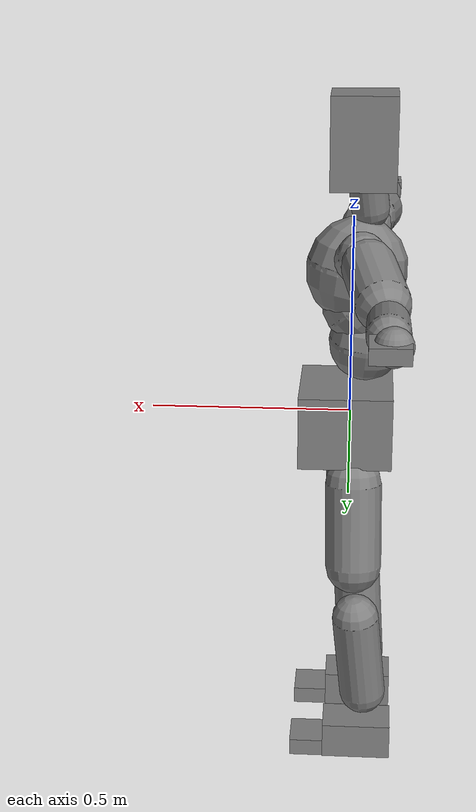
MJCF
<mujoco model="smpl">
  <compiler angle="radian" />
  <default>
    <motor ctrlrange="-1 1" ctrllimited="true" />
    <geom condim="1" friction="1.0 0.05 0.05" solimp=".9 .99 .003" solref=".015 1" />
    <joint limited="true" solimplimit="0 .99 .01" />
    <site size=".04" group="3" />
    <default class="force-torque">
      <site type="box" size=".01 .01 .02" rgba="1 0 0 1" />
    </default>
    <default class="touch">
      <site type="capsule" rgba="0 0 1 .3" />
    </default>
  </default>
  <worldbody>
    <body name="Pelvis" pos="0 0 0">
      <freejoint name="Pelvis" />
      <body name="L_Hip" pos="-0.0068 0.0695 -0.0914">
        <joint name="L_Hip_x" type="hinge" pos="0 0 0" axis="1 0 0" actuatorfrcrange="-300 300" stiffness="500" damping="50" armature="0.02" range="-0.5236 1.5708" />
        <joint name="L_Hip_y" type="hinge" pos="0 0 0" axis="0 1 0" actuatorfrcrange="-300 300" stiffness="500" damping="50" armature="0.02" range="-2.4435 1.0472" />
        <joint name="L_Hip_z" type="hinge" pos="0 0 0" axis="0 0 1" actuatorfrcrange="-300 300" stiffness="500" damping="50" armature="0.02" range="-0.6109 1.0472" />
        <body name="L_Knee" pos="-0.0045 0.0343 -0.3752">
          <joint name="L_Knee_x" type="hinge" pos="0 0 0" axis="1 0 0" actuatorfrcrange="-200 200" stiffness="500" damping="50" armature="0.02" range="-0.5236 0.5236" />
          <joint name="L_Knee_y" type="hinge" pos="0 0 0" axis="0 1 0" actuatorfrcrange="-200 200" stiffness="500" damping="50" armature="0.02" range="0 2.7925" />
          <joint name="L_Knee_z" type="hinge" pos="0 0 0" axis="0 0 1" actuatorfrcrange="-200 200" stiffness="500" damping="50" armature="0.02" range="-0.5236 0.5236" />
          <body name="L_Ankle" pos="-0.0437 -0.0136 -0.398">
            <joint name="L_Ankle_x" type="hinge" pos="0 0 0" axis="1 0 0" actuatorfrcrange="-100 100" stiffness="400" damping="40" armature="0.02" range="-0.5236 0.5236" />
            <joint name="L_Ankle_y" type="hinge" pos="0 0 0" axis="0 1 0" actuatorfrcrange="-100 100" stiffness="400" damping="40" armature="0.02" range="-0.9599 0.9599" />
            <joint name="L_Ankle_z" type="hinge" pos="0 0 0" axis="0 0 1" actuatorfrcrange="-100 100" stiffness="400" damping="40" armature="0.02" range="-0.6981 0.6981" />
            <body name="L_Toe" pos="0.1193 0.0124 -0.0258">
              <joint name="L_Toe_x" type="hinge" pos="0 0 0" axis="1 0 0" actuatorfrcrange="-75 75" stiffness="200" damping="20" armature="0.02" range="-0.5236 0.5236" />
              <joint name="L_Toe_y" type="hinge" pos="0 0 0" axis="0 1 0" actuatorfrcrange="-75 75" stiffness="200" damping="20" armature="0.02" range="-1.0472 1.0472" />
              <joint name="L_Toe_z" type="hinge" pos="0 0 0" axis="0 0 1" actuatorfrcrange="-75 75" stiffness="200" damping="20" armature="0.02" range="-0.5236 0.5236" />
              <geom type="box" pos="0.023038 0.028710 -0.002319" quat="0.999986 0.002316 0.002404 -0.004045" size="0.0512 0.0511 0.0222" density="348.643194" />
            </body>
            <geom type="box" pos="0.019061 0.041993 -0.002924" quat="0.999986 0.002316 0.002404 -0.004045" size="0.0882 0.0538 0.0467" density="406.139068" />
          </body>
          <geom type="capsule" contype="1" conaffinity="1" fromto="-0.015548 0.021243 -0.059293 -0.038822 -0.007378 -0.295920" size="0.0603" density="997.146534" />
        </body>
        <geom type="capsule" contype="1" conaffinity="1" fromto="-0.006680 0.019453 -0.070117 -0.010837 0.053776 -0.284242" size="0.0711" density="1090.054895" />
      </body>
      <body name="R_Hip" pos="-0.0043 -0.0677 -0.0905">
        <joint name="R_Hip_x" type="hinge" pos="0 0 0" axis="1 0 0" actuatorfrcrange="-300 300" stiffness="500" damping="50" armature="0.02" range="-1.5708 0.5236" />
        <joint name="R_Hip_y" type="hinge" pos="0 0 0" axis="0 1 0" actuatorfrcrange="-300 300" stiffness="500" damping="50" armature="0.02" range="-2.4435 1.0472" />
        <joint name="R_Hip_z" type="hinge" pos="0 0 0" axis="0 0 1" actuatorfrcrange="-300 300" stiffness="500" damping="50" armature="0.02" range="-1.0472 0.6109" />
        <body name="R_Knee" pos="-0.0089 -0.0383 -0.3826">
          <joint name="R_Knee_x" type="hinge" pos="0 0 0" axis="1 0 0" actuatorfrcrange="-200 200" stiffness="500" damping="50" armature="0.02" range="-0.5236 0.5236" />
          <joint name="R_Knee_y" type="hinge" pos="0 0 0" axis="0 1 0" actuatorfrcrange="-200 200" stiffness="500" damping="50" armature="0.02" range="0 2.7925" />
          <joint name="R_Knee_z" type="hinge" pos="0 0 0" axis="0 0 1" actuatorfrcrange="-200 200" stiffness="500" damping="50" armature="0.02" range="-0.5236 0.5236" />
          <body name="R_Ankle" pos="-0.0423 0.0158 -0.3984">
            <joint name="R_Ankle_x" type="hinge" pos="0 0 0" axis="1 0 0" actuatorfrcrange="-100 100" stiffness="400" damping="40" armature="0.02" range="-0.5236 0.5236" />
            <joint name="R_Ankle_y" type="hinge" pos="0 0 0" axis="0 1 0" actuatorfrcrange="-100 100" stiffness="400" damping="40" armature="0.02" range="-0.9599 0.9599" />
            <joint name="R_Ankle_z" type="hinge" pos="0 0 0" axis="0 0 1" actuatorfrcrange="-100 100" stiffness="400" damping="40" armature="0.02" range="-0.6981 0.6981" />
            <body name="R_Toe" pos="0.1193 -0.0124 -0.0258">
              <joint name="R_Toe_x" type="hinge" pos="0 0 0" axis="1 0 0" actuatorfrcrange="-75 75" stiffness="200" damping="20" armature="0.02" range="-0.5236 0.5236" />
              <joint name="R_Toe_y" type="hinge" pos="0 0 0" axis="0 1 0" actuatorfrcrange="-75 75" stiffness="200" damping="20" armature="0.02" range="-1.0472 1.0472" />
              <joint name="R_Toe_z" type="hinge" pos="0 0 0" axis="0 0 1" actuatorfrcrange="-75 75" stiffness="200" damping="20" armature="0.02" range="-0.5236 0.5236" />
              <geom type="box" pos="0.021475 -0.020679 0.003507" quat="0.999986 0.002316 0.002404 -0.004045" size="0.0512 0.051 0.0222" density="349.326808" />
            </body>
            <geom type="box" pos="0.017499 -0.032096 0.002803" quat="0.999986 0.002316 0.002404 -0.004045" size="0.0882 0.0538 0.0467" density="406.139068" />
          </body>
          <geom type="capsule" contype="1" conaffinity="1" fromto="-0.016247 -0.005155 -0.050779 -0.031314 0.006175 -0.290859" size="0.0624" density="919.897980" />
        </body>
        <geom type="capsule" contype="1" conaffinity="1" fromto="-0.005691 -0.012642 -0.079921 -0.016491 -0.038609 -0.284994" size="0.0706" density="1163.523790" />
      </body>
      <body name="Torso" pos="-0.0267 -0.0025 0.109">
        <joint name="Torso_x" type="hinge" pos="0 0 0" axis="1 0 0" actuatorfrcrange="-300 300" stiffness="1000" damping="100" armature="0.02" range="-1.0472 1.0472" />
        <joint name="Torso_y" type="hinge" pos="0 0 0" axis="0 1 0" actuatorfrcrange="-300 300" stiffness="1000" damping="100" armature="0.02" range="-1.0472 1.5708" />
        <joint name="Torso_z" type="hinge" pos="0 0 0" axis="0 0 1" actuatorfrcrange="-300 300" stiffness="1000" damping="100" armature="0.02" range="-0.8727 0.8727" />
        <body name="Spine" pos="0.0011 0.0055 0.1352">
          <joint name="Spine_x" type="hinge" pos="0 0 0" axis="1 0 0" actuatorfrcrange="-200 200" stiffness="1000" damping="100" armature="0.02" range="-1.0472 1.0472" />
          <joint name="Spine_y" type="hinge" pos="0 0 0" axis="0 1 0" actuatorfrcrange="-200 200" stiffness="1000" damping="100" armature="0.02" range="-1.0472 1.5708" />
          <joint name="Spine_z" type="hinge" pos="0 0 0" axis="0 0 1" actuatorfrcrange="-200 200" stiffness="1000" damping="100" armature="0.02" range="-0.8727 0.8727" />
          <body name="Chest" pos="0.0254 0.0015 0.0529">
            <joint name="Chest_x" type="hinge" pos="0 0 0" axis="1 0 0" actuatorfrcrange="-150 150" stiffness="1000" damping="100" armature="0.02" range="-1.0472 1.0472" />
            <joint name="Chest_y" type="hinge" pos="0 0 0" axis="0 1 0" actuatorfrcrange="-150 150" stiffness="1000" damping="100" armature="0.02" range="-1.0472 1.5708" />
            <joint name="Chest_z" type="hinge" pos="0 0 0" axis="0 0 1" actuatorfrcrange="-150 150" stiffness="1000" damping="100" armature="0.02" range="-0.8727 0.8727" />
            <body name="Neck" pos="-0.0429 -0.0028 0.2139">
              <joint name="Neck_x" type="hinge" pos="0 0 0" axis="1 0 0" actuatorfrcrange="-75 75" stiffness="500" damping="50" armature="0.02" range="-0.8727 0.8727" />
              <joint name="Neck_y" type="hinge" pos="0 0 0" axis="0 1 0" actuatorfrcrange="-75 75" stiffness="500" damping="50" armature="0.02" range="-0.6981 1.0472" />
              <joint name="Neck_z" type="hinge" pos="0 0 0" axis="0 0 1" actuatorfrcrange="-75 75" stiffness="500" damping="50" armature="0.02" range="-0.7854 0.7854" />
              <body name="Head" pos="0.0513 0.0052 0.065">
                <joint name="Head_x" type="hinge" pos="0 0 0" axis="1 0 0" actuatorfrcrange="-25 25" stiffness="200" damping="20" armature="0.02" range="-0.8727 0.8727" />
                <joint name="Head_y" type="hinge" pos="0 0 0" axis="0 1 0" actuatorfrcrange="-25 25" stiffness="200" damping="20" armature="0.02" range="-0.6981 1.0472" />
                <joint name="Head_z" type="hinge" pos="0 0 0" axis="0 0 1" actuatorfrcrange="-25 25" stiffness="200" damping="20" armature="0.02" range="-0.7854 0.7854" />
                <geom type="box" pos="-0.027757 -0.009184 0.104107" quat="0.999986 0.002316 0.002404 -0.004045" size="0.0791 0.0629 0.1116" density="808.496445" />
              </body>
              <geom type="capsule" contype="1" conaffinity="1" fromto="0.004469 -0.013165 0.003452 0.016247 0.003517 0.095175" size="0.0462" density="365.906451" />
            </body>
            <body name="L_Thorax" pos="-0.0341 0.0788 0.1217">
              <joint name="L_Thorax_x" type="hinge" pos="0 0 0" axis="1 0 0" actuatorfrcrange="-200 200" stiffness="500" damping="50" armature="0.02" range="-0.6981 0.5236" />
              <joint name="L_Thorax_y" type="hinge" pos="0 0 0" axis="0 1 0" actuatorfrcrange="-200 200" stiffness="500" damping="50" armature="0.02" range="-0.5236 0.5236" />
              <joint name="L_Thorax_z" type="hinge" pos="0 0 0" axis="0 0 1" actuatorfrcrange="-200 200" stiffness="500" damping="50" armature="0.02" range="-0.5236 0.5236" />
              <body name="L_Shoulder" pos="-0.0089 0.091 0.0305">
                <joint name="L_Shoulder_x" type="hinge" pos="0 0 0" axis="1 0 0" actuatorfrcrange="-150 150" stiffness="400" damping="40" armature="0.02" range="-2.3562 1.5708" />
                <joint name="L_Shoulder_y" type="hinge" pos="0 0 0" axis="0 1 0" actuatorfrcrange="-150 150" stiffness="400" damping="40" armature="0.02" range="-1.5708 1.5708" />
                <joint name="L_Shoulder_z" type="hinge" pos="0 0 0" axis="0 0 1" actuatorfrcrange="-150 150" stiffness="400" damping="40" armature="0.02" range="-2.7925 1.0472" />
                <body name="L_Elbow" pos="-0.0275 0.2596 -0.0128">
                  <joint name="L_Elbow_x" type="hinge" pos="0 0 0" axis="1 0 0" actuatorfrcrange="-100 100" stiffness="300" damping="30" armature="0.02" range="-0.5236 0.5236" />
                  <joint name="L_Elbow_y" type="hinge" pos="0 0 0" axis="0 1 0" actuatorfrcrange="-100 100" stiffness="300" damping="30" armature="0.02" range="-0.5236 0.5236" />
                  <joint name="L_Elbow_z" type="hinge" pos="0 0 0" axis="0 0 1" actuatorfrcrange="-100 100" stiffness="300" damping="30" armature="0.02" range="-2.7925 0" />
                  <body name="L_Wrist" pos="-0.0012 0.2492 0.009">
                    <joint name="L_Wrist_x" type="hinge" pos="0 0 0" axis="1 0 0" actuatorfrcrange="-75 75" stiffness="200" damping="20" armature="0.02" range="-1.5708 1.5708" />
                    <joint name="L_Wrist_y" type="hinge" pos="0 0 0" axis="0 1 0" actuatorfrcrange="-75 75" stiffness="200" damping="20" armature="0.02" range="-1.5708 1.5708" />
                    <joint name="L_Wrist_z" type="hinge" pos="0 0 0" axis="0 0 1" actuatorfrcrange="-75 75" stiffness="200" damping="20" armature="0.02" range="-1.0472 1.0472" />
                    <body name="L_Hand" pos="-0.0149 0.084 -0.0082">
                      <joint name="L_Hand_x" type="hinge" pos="0 0 0" axis="1 0 0" actuatorfrcrange="-50 50" stiffness="100" damping="10" armature="0.02" range="-1.5708 1.5708" />
                      <joint name="L_Hand_y" type="hinge" pos="0 0 0" axis="0 1 0" actuatorfrcrange="-50 50" stiffness="100" damping="10" armature="0.02" range="-1.5708 1.5708" />
                      <joint name="L_Hand_z" type="hinge" pos="0 0 0" axis="0 0 1" actuatorfrcrange="-50 50" stiffness="100" damping="10" armature="0.02" range="-1.5708 1.5708" />
                      <geom type="sphere" contype="1" conaffinity="1" pos="0.002823 -0.038296 -0.018826" size="0.041620" density="530.864244" />
                    </body>
                    <geom type="box" pos="-0.005156 0.054835 -0.030081" quat="0.999986 0.002316 0.002404 -0.004045" size="0.0428 0.0436 0.0177" density="1128.126878" />
                  </body>
                  <geom type="capsule" contype="1" conaffinity="1" fromto="-0.007192 0.054244 -0.045639 -0.005111 0.201748 -0.027063" size="0.0471" density="734.799835" />
                </body>
                <geom type="capsule" contype="1" conaffinity="1" fromto="0.007933 0.063452 -0.007307 -0.024557 0.214321 -0.050350" size="0.0631" density="478.484804" />
              </body>
              <geom type="capsule" contype="1" conaffinity="1" fromto="0.023793 -0.004707 -0.008966 0.013320 0.076921 0.025864" size="0.0572" density="409.348993" />
            </body>
            <body name="R_Thorax" pos="-0.0386 -0.0818 0.1188">
              <joint name="R_Thorax_x" type="hinge" pos="0 0 0" axis="1 0 0" actuatorfrcrange="-200 200" stiffness="500" damping="50" armature="0.02" range="-0.5236 0.6981" />
              <joint name="R_Thorax_y" type="hinge" pos="0 0 0" axis="0 1 0" actuatorfrcrange="-200 200" stiffness="500" damping="50" armature="0.02" range="-0.5236 0.5236" />
              <joint name="R_Thorax_z" type="hinge" pos="0 0 0" axis="0 0 1" actuatorfrcrange="-200 200" stiffness="500" damping="50" armature="0.02" range="-0.5236 0.5236" />
              <body name="R_Shoulder" pos="-0.0091 -0.096 0.0326">
                <joint name="R_Shoulder_x" type="hinge" pos="0 0 0" axis="1 0 0" actuatorfrcrange="-150 150" stiffness="400" damping="40" armature="0.02" range="-1.5708 2.3562" />
                <joint name="R_Shoulder_y" type="hinge" pos="0 0 0" axis="0 1 0" actuatorfrcrange="-150 150" stiffness="400" damping="40" armature="0.02" range="-1.5708 1.5708" />
                <joint name="R_Shoulder_z" type="hinge" pos="0 0 0" axis="0 0 1" actuatorfrcrange="-150 150" stiffness="400" damping="40" armature="0.02" range="-1.0472 2.7925" />
                <body name="R_Elbow" pos="-0.0214 -0.2537 -0.0133">
                  <joint name="R_Elbow_x" type="hinge" pos="0 0 0" axis="1 0 0" actuatorfrcrange="-100 100" stiffness="300" damping="30" armature="0.02" range="-0.5236 0.5236" />
                  <joint name="R_Elbow_y" type="hinge" pos="0 0 0" axis="0 1 0" actuatorfrcrange="-100 100" stiffness="300" damping="30" armature="0.02" range="-0.5236 0.5236" />
                  <joint name="R_Elbow_z" type="hinge" pos="0 0 0" axis="0 0 1" actuatorfrcrange="-100 100" stiffness="300" damping="30" armature="0.02" range="0 2.7925" />
                  <body name="R_Wrist" pos="-0.0056 -0.2553 0.0078">
                    <joint name="R_Wrist_x" type="hinge" pos="0 0 0" axis="1 0 0" actuatorfrcrange="-75 75" stiffness="200" damping="20" armature="0.02" range="-1.5708 1.5708" />
                    <joint name="R_Wrist_y" type="hinge" pos="0 0 0" axis="0 1 0" actuatorfrcrange="-75 75" stiffness="200" damping="20" armature="0.02" range="-1.5708 1.5708" />
                    <joint name="R_Wrist_z" type="hinge" pos="0 0 0" axis="0 0 1" actuatorfrcrange="-75 75" stiffness="200" damping="20" armature="0.02" range="-1.0472 1.0472" />
                    <body name="R_Hand" pos="-0.0103 -0.0846 -0.0061">
                      <joint name="R_Hand_x" type="hinge" pos="0 0 0" axis="1 0 0" actuatorfrcrange="-50 50" stiffness="100" damping="10" armature="0.02" range="-1.5708 1.5708" />
                      <joint name="R_Hand_y" type="hinge" pos="0 0 0" axis="0 1 0" actuatorfrcrange="-50 50" stiffness="100" damping="10" armature="0.02" range="-1.5708 1.5708" />
                      <joint name="R_Hand_z" type="hinge" pos="0 0 0" axis="0 0 1" actuatorfrcrange="-50 50" stiffness="100" damping="10" armature="0.02" range="-1.5708 1.5708" />
                      <geom type="sphere" contype="1" conaffinity="1" pos="0.002743 0.038404 -0.018806" size="0.041990" density="530.883377" />
                    </body>
                    <geom type="box" pos="-0.014149 -0.060000 -0.034408" quat="0.999986 0.002316 0.002404 -0.004045" size="0.0428 0.041 0.0177" density="1273.497307" />
                  </body>
                  <geom type="capsule" contype="1" conaffinity="1" fromto="-0.004190 -0.065554 -0.018221 -0.012890 -0.211974 -0.021660" size="0.0474" density="744.287147" />
                </body>
                <geom type="capsule" contype="1" conaffinity="1" fromto="0.005373 -0.055115 -0.005140 -0.015625 -0.216665 -0.024091" size="0.0629" density="466.074504" />
              </body>
              <geom type="capsule" contype="1" conaffinity="1" fromto="0.019987 -0.004336 -0.008272 0.007476 -0.074083 0.023264" size="0.0627" density="350.132256" />
            </body>
            <geom type="capsule" contype="1" conaffinity="1" fromto="-0.007808 -0.008104 0.063538 -0.010257 -0.008939 0.075547" size="0.1233" density="1321.362526" />
          </body>
          <geom type="capsule" contype="1" conaffinity="1" fromto="0.003782 0.005196 0.032558 0.008296 0.003734 0.038029" size="0.0929" density="994.237046" />
        </body>
        <geom type="capsule" contype="1" conaffinity="1" fromto="-0.009983 0.009349 0.073920 -0.011010 0.010799 0.086532" size="0.0925" density="785.628746" />
      </body>
      <geom type="box" pos="0.009297 0.000705 -0.018533" quat="0.999986 0.002316 0.002404 -0.004045" size="0.1161 0.1271 0.0926" density="558.685486" />
    </body>
  </worldbody>
  <actuator>
    <motor name="L_Hip_x" joint="L_Hip_x" gear="300" />
    <motor name="L_Hip_y" joint="L_Hip_y" gear="300" />
    <motor name="L_Hip_z" joint="L_Hip_z" gear="300" />
    <motor name="L_Knee_x" joint="L_Knee_x" gear="200" />
    <motor name="L_Knee_y" joint="L_Knee_y" gear="200" />
    <motor name="L_Knee_z" joint="L_Knee_z" gear="200" />
    <motor name="L_Ankle_x" joint="L_Ankle_x" gear="100" />
    <motor name="L_Ankle_y" joint="L_Ankle_y" gear="100" />
    <motor name="L_Ankle_z" joint="L_Ankle_z" gear="100" />
    <motor name="L_Toe_x" joint="L_Toe_x" gear="75" />
    <motor name="L_Toe_y" joint="L_Toe_y" gear="75" />
    <motor name="L_Toe_z" joint="L_Toe_z" gear="75" />
    <motor name="R_Hip_x" joint="R_Hip_x" gear="300" />
    <motor name="R_Hip_y" joint="R_Hip_y" gear="300" />
    <motor name="R_Hip_z" joint="R_Hip_z" gear="300" />
    <motor name="R_Knee_x" joint="R_Knee_x" gear="200" />
    <motor name="R_Knee_y" joint="R_Knee_y" gear="200" />
    <motor name="R_Knee_z" joint="R_Knee_z" gear="200" />
    <motor name="R_Ankle_x" joint="R_Ankle_x" gear="100" />
    <motor name="R_Ankle_y" joint="R_Ankle_y" gear="100" />
    <motor name="R_Ankle_z" joint="R_Ankle_z" gear="100" />
    <motor name="R_Toe_x" joint="R_Toe_x" gear="75" />
    <motor name="R_Toe_y" joint="R_Toe_y" gear="75" />
    <motor name="R_Toe_z" joint="R_Toe_z" gear="75" />
    <motor name="Torso_x" joint="Torso_x" gear="300" />
    <motor name="Torso_y" joint="Torso_y" gear="300" />
    <motor name="Torso_z" joint="Torso_z" gear="300" />
    <motor name="Spine_x" joint="Spine_x" gear="200" />
    <motor name="Spine_y" joint="Spine_y" gear="200" />
    <motor name="Spine_z" joint="Spine_z" gear="200" />
    <motor name="Chest_x" joint="Chest_x" gear="150" />
    <motor name="Chest_y" joint="Chest_y" gear="150" />
    <motor name="Chest_z" joint="Chest_z" gear="150" />
    <motor name="Neck_x" joint="Neck_x" gear="75" />
    <motor name="Neck_y" joint="Neck_y" gear="75" />
    <motor name="Neck_z" joint="Neck_z" gear="75" />
    <motor name="Head_x" joint="Head_x" gear="25" />
    <motor name="Head_y" joint="Head_y" gear="25" />
    <motor name="Head_z" joint="Head_z" gear="25" />
    <motor name="L_Thorax_x" joint="L_Thorax_x" gear="200" />
    <motor name="L_Thorax_y" joint="L_Thorax_y" gear="200" />
    <motor name="L_Thorax_z" joint="L_Thorax_z" gear="200" />
    <motor name="L_Shoulder_x" joint="L_Shoulder_x" gear="150" />
    <motor name="L_Shoulder_y" joint="L_Shoulder_y" gear="150" />
    <motor name="L_Shoulder_z" joint="L_Shoulder_z" gear="150" />
    <motor name="L_Elbow_x" joint="L_Elbow_x" gear="100" />
    <motor name="L_Elbow_y" joint="L_Elbow_y" gear="100" />
    <motor name="L_Elbow_z" joint="L_Elbow_z" gear="100" />
    <motor name="L_Wrist_x" joint="L_Wrist_x" gear="75" />
    <motor name="L_Wrist_y" joint="L_Wrist_y" gear="75" />
    <motor name="L_Wrist_z" joint="L_Wrist_z" gear="75" />
    <motor name="L_Hand_x" joint="L_Hand_x" gear="50" />
    <motor name="L_Hand_y" joint="L_Hand_y" gear="50" />
    <motor name="L_Hand_z" joint="L_Hand_z" gear="50" />
    <motor name="R_Thorax_x" joint="R_Thorax_x" gear="200" />
    <motor name="R_Thorax_y" joint="R_Thorax_y" gear="200" />
    <motor name="R_Thorax_z" joint="R_Thorax_z" gear="200" />
    <motor name="R_Shoulder_x" joint="R_Shoulder_x" gear="150" />
    <motor name="R_Shoulder_y" joint="R_Shoulder_y" gear="150" />
    <motor name="R_Shoulder_z" joint="R_Shoulder_z" gear="150" />
    <motor name="R_Elbow_x" joint="R_Elbow_x" gear="100" />
    <motor name="R_Elbow_y" joint="R_Elbow_y" gear="100" />
    <motor name="R_Elbow_z" joint="R_Elbow_z" gear="100" />
    <motor name="R_Wrist_x" joint="R_Wrist_x" gear="75" />
    <motor name="R_Wrist_y" joint="R_Wrist_y" gear="75" />
    <motor name="R_Wrist_z" joint="R_Wrist_z" gear="75" />
    <motor name="R_Hand_x" joint="R_Hand_x" gear="50" />
    <motor name="R_Hand_y" joint="R_Hand_y" gear="50" />
    <motor name="R_Hand_z" joint="R_Hand_z" gear="50" />
  </actuator>
</mujoco>
